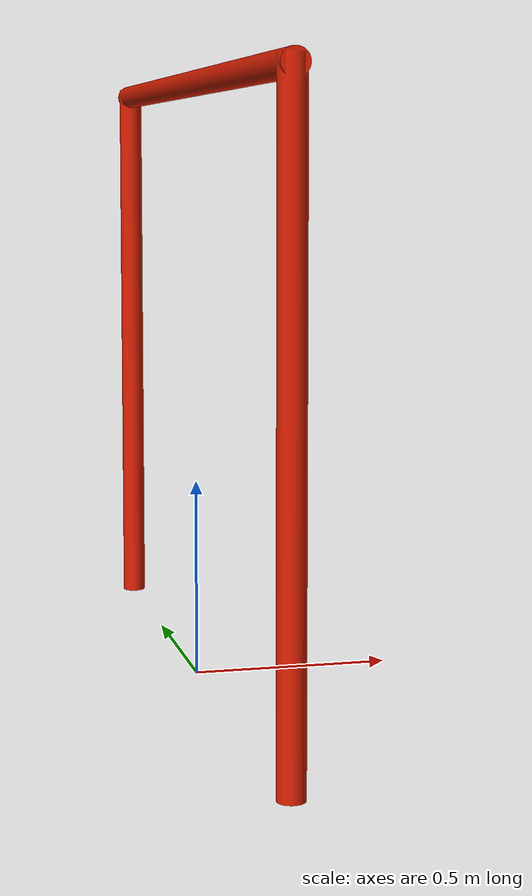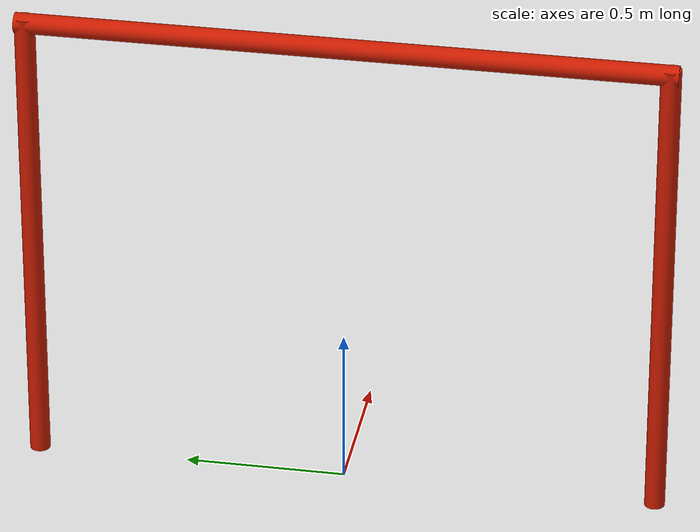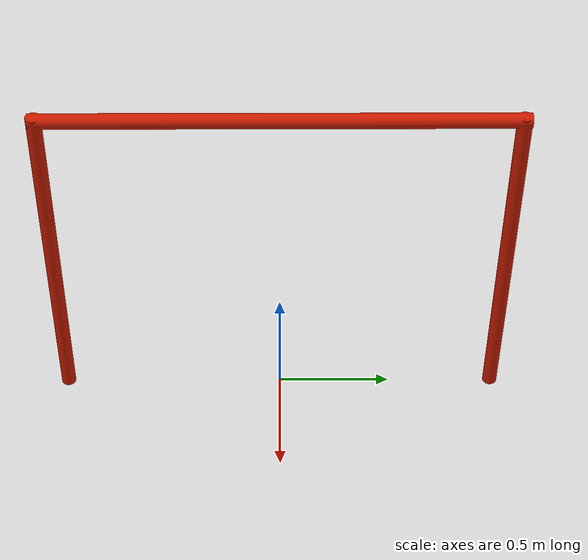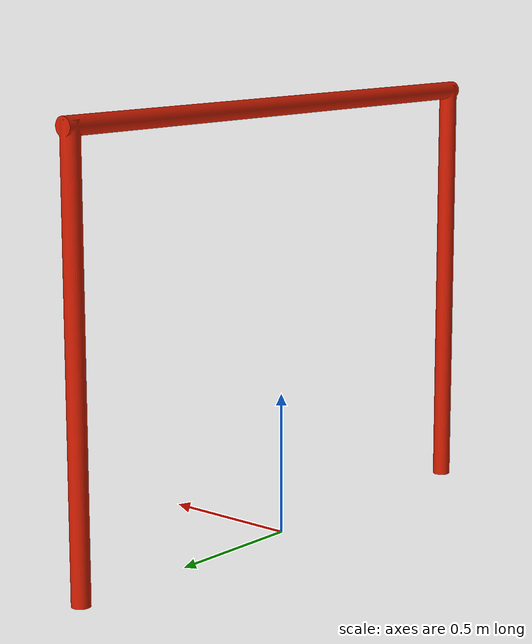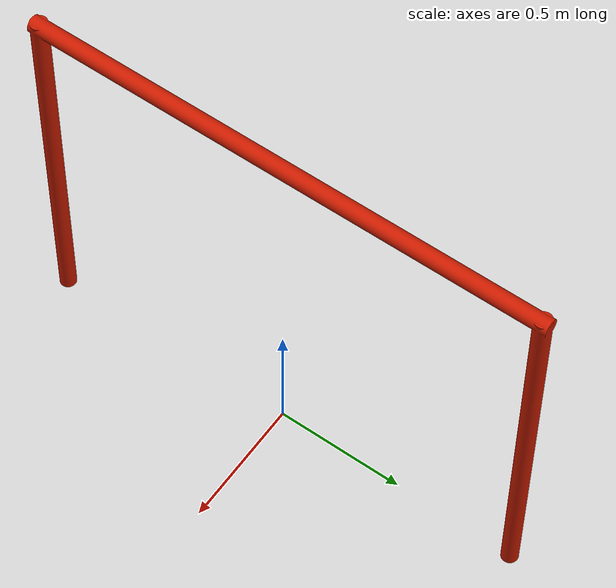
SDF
<?xml version='1.0'?>
<sdf version='1.0'>

  <model name='New Gate'>
    <pose>0 0 0 0 0 0</pose>
    <self_collide> 0 </self_collide>
    <static> 1</static>

    <link name='board'>
      <pose>0 0 0 0 0 0</pose>
      <visual name='main'>
        <geometry>
            <mesh><uri>file://new_gate/gate1.dae</uri></mesh>
        </geometry>
      </visual>
      <collision name='main'>
        <pose>0 0 0 0 0 0</pose>
        <geometry>
            <mesh><uri>file://new_gate/gate1.dae</uri></mesh>
        </geometry>
      </collision>
    </link>

  </model>
</sdf>
